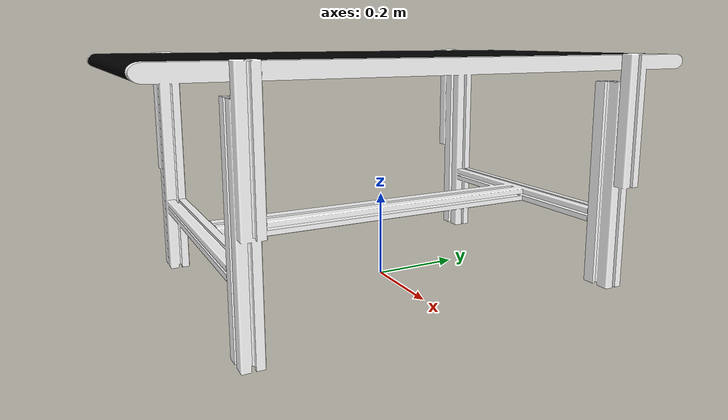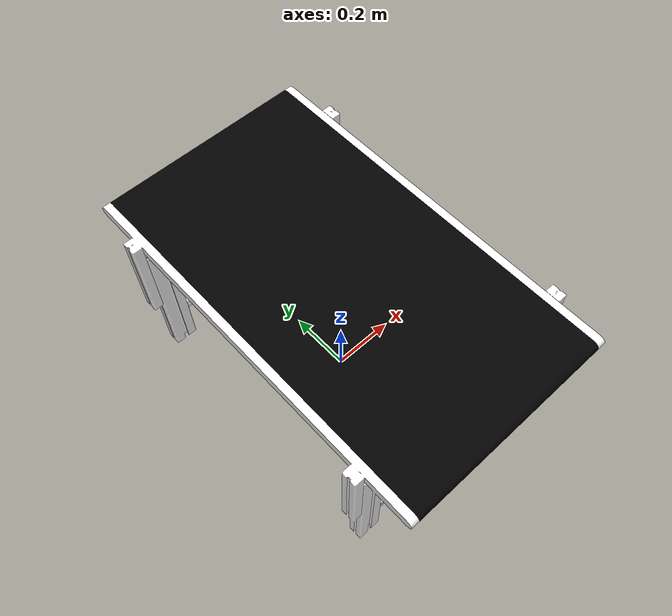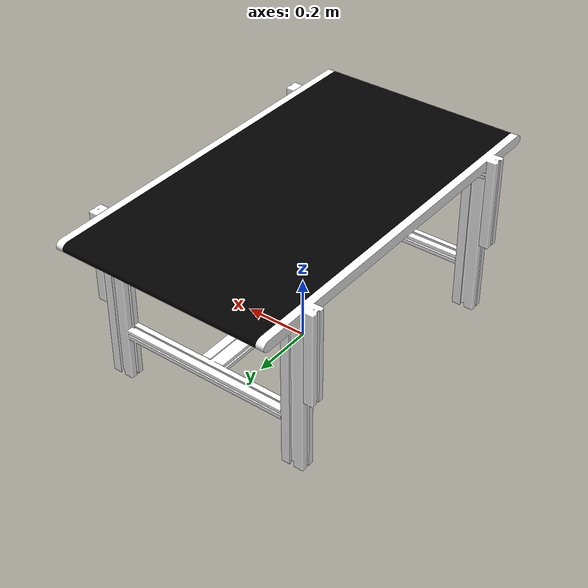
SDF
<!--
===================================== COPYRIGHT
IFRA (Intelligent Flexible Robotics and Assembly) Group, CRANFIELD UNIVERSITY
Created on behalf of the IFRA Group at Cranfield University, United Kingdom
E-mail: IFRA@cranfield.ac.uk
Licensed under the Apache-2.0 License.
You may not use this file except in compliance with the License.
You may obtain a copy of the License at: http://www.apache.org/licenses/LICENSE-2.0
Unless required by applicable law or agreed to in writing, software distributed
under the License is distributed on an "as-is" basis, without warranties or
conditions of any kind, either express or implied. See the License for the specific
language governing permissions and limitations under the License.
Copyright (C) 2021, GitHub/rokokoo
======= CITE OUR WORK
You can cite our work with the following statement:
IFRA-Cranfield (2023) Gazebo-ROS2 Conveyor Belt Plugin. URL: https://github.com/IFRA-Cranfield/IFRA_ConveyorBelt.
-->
<?xml version="1.0" ?>

<sdf version="1.4">

    <model name="conveyor_belt">

        <model name="conveyorbelt_fixed">

            <static>true</static>

            <link name="belt_visual">
                <visual name="visual">
                    <geometry>
                        <mesh>
                            <scale>1 1 1</scale>
                            <uri>model://conveyor_belt/meshes/conveyor_belt.dae</uri>
                        </mesh>
                    </geometry>
                </visual>
                <collision name="collision">
                    <origin xyz="0.0 0.0 0" rpy="0.0 0.0 0.0"/>
                    <geometry>
                        <mesh>
                            <scale>1 1 1</scale>
                            <uri>model://conveyor_belt/meshes/conveyor_belt.dae</uri>
                        </mesh>
                    </geometry>
                </collision>
            </link>

        </model>

        <joint name="belt_joint" type="prismatic">
            <parent>conveyorbelt_fixed::belt_visual</parent>
            <child>conveyorbelt_moving::belt_moving</child>
            <axis>
                <xyz>0 1 0</xyz>
                <limit>
                    <lower>0.0</lower>
                    <upper>0.01</upper>
                </limit>
            </axis>
        </joint>

        <plugin name="ros2_conveyorbelt_plugin" filename="libros2_conveyorbelt_plugin.so" >
            <ros>
                <namespace></namespace>
            </ros>
            <max_velocity>1.0</max_velocity>
            <publish_rate>1000</publish_rate>
        </plugin>

    </model>

</sdf>
